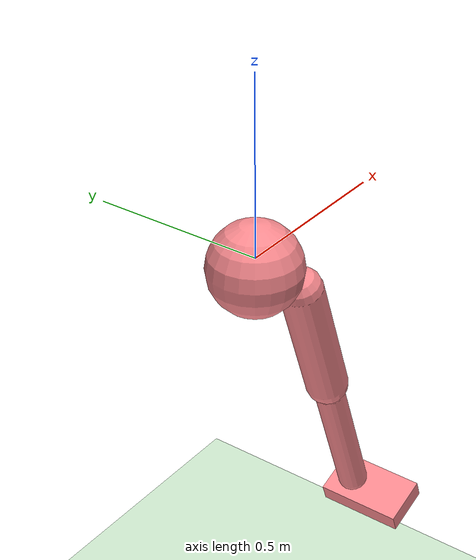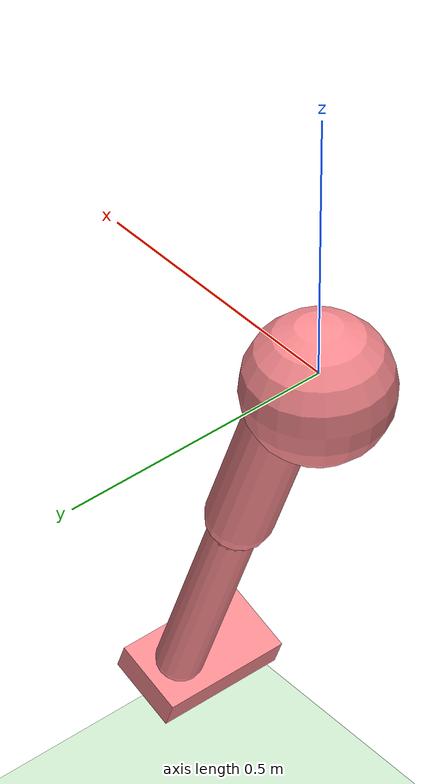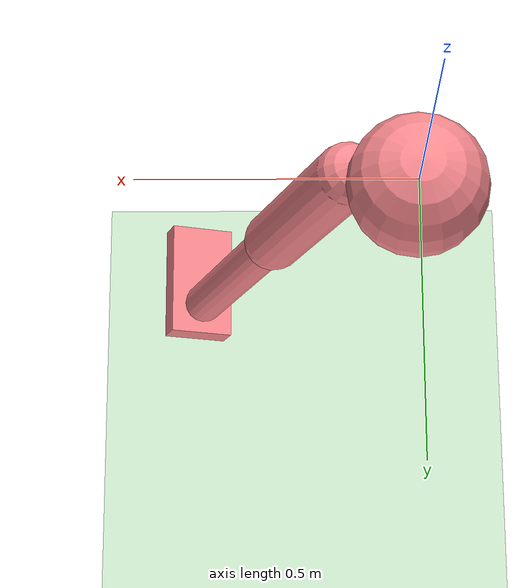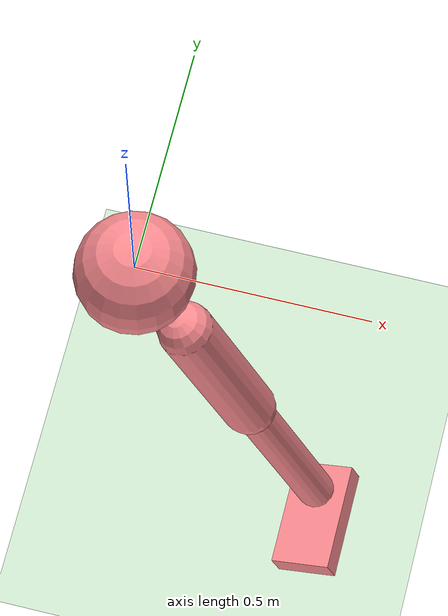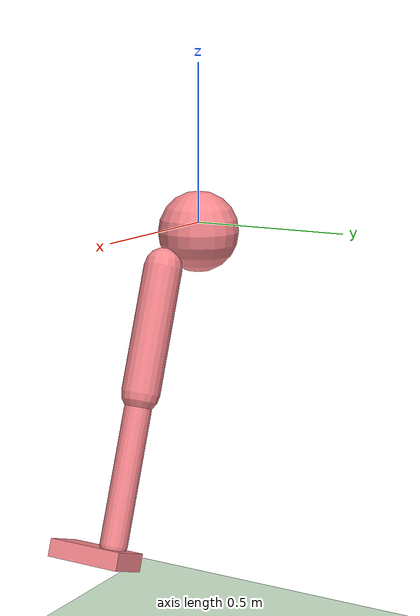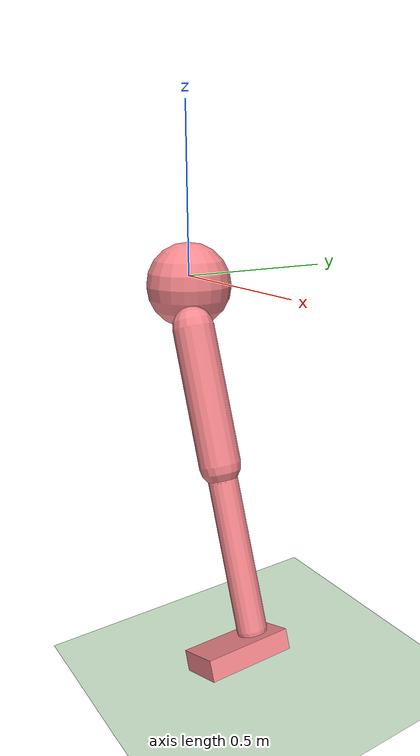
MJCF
<mujoco model="humanoid">
  <compiler angle="degree" inertiafromgeom="true" coordinate="global" />
  <include file="./common/materials.xml" />
    <visual>
    <headlight ambient=".4 .4 .4" diffuse=".8 .8 .8" specular="0.3 0.3 0.3" />
    <map znear=".01" />
    <quality shadowsize="2048" />
  </visual>
  <default>
    <joint damping="0.0" armature="0.01" stiffness="0.0" limited="true" />
    <geom conaffinity="7" condim="1" contype="7" margin="0.001" material="self" rgba=".98 .54 .56 1." />
  </default>
  <statistic extent="3" center="0 0 1" />
  <option timestep="0.00222222222" />
  <asset>
    <texture type="skybox" file="./common/sky1.png" gridsize="3 4" gridlayout=".U..LFRB.D.." width="8192" height="8192" />
    <texture builtin="flat" height="1278" mark="cross" markrgb="1 1 1" name="texgeom" random="0.01" rgb1=".8 .6 .4" rgb2=".8 .6 .4" type="cube" width="127" />
  </asset>
  <worldbody>
    <light cutoff="100" diffuse="1 1 1" dir="-0 0 -1.3" directional="true" exponent="1" pos="0 0 1.3" specular=".1 .1 .1" />
    <geom condim="3" friction="1. .1 .1" material="grid_new" name="floor" pos="0.0 0.0 -1.3" rgba=".8 .9 .8 1" size="117.025545004681 117.025545004681 0.23405109000936203" type="plane" />

    <body name="root" user="0.0000 -0.0000 0.0000" pos="0.0 -0.0 0.0">
      <joint armature="0.0" limited="false" name="root" pos="0.0 -0.0 0.0" stiffness="1e3" type="hinge" />
      <geom pos="0.0 0.0 -0.028086130801123443" size="0.1287280995051491" type="sphere" mass="8.8725" />
      <body name="lhipjoint" user="0.0963 -0.0494 -0.0918" pos="0.0 -0.0 0.0">
        <body name="lfemur" user="0.2274 -0.0494 -0.4521" pos="0.1126955998395078 -0.05781061923231242 -0.10742945031429717">
          <joint axis="0.0000 -1.0000 0.0000" name="lfemur_z" pos="0.1126955998395078 -0.05781061923231242 -0.10742945031429717" range="-60.0000 70.0000" type="hinge" />
          <joint axis="-0.3420 -0.0000 0.9397" name="lfemur_y" pos="0.1126955998395078 -0.05781061923231242 -0.10742945031429717" range="-70.0000 70.0000" type="hinge" />
          <joint axis="0.9397 0.0000 0.3420" name="lfemur_x" pos="0.1126955998395078 -0.05781061923231242 -0.10742945031429717" range="-160.0000 20.0000" type="hinge" />
          <geom fromto="0.12065333689982612 -0.05781061923231242 -0.1294302527751772 0.2581583522803263 -0.05781061923231242 -0.5070716865052828" size="0.06085328340243412" type="capsule" mass="10.8525" />
          <body name="ltibia" user="0.3657 -0.0494 -0.8321" pos="0.2661160893406446 -0.05781061923231242 -0.5290724889661629">
            <joint axis="0.9397 0.0000 0.3420" name="ltibia_x" pos="0.2661160893406446 -0.05781061923231242 -0.5290724889661629" range="0.0000 170.0000" type="hinge" />
            <geom contype="1" conaffinity="1" fromto="0.2741908519459676 -0.05781061923231242 -0.5510732914270429 0.42000468102180016 -0.05781061923231242 -0.9517687575230707" size="0.04329945165173197" type="capsule" mass="3.4274999999999998" />
            <body name="lfoot" user="0.3731 -0.1606 -0.8523" pos="0.4279624180821185 -0.05781061923231242 -0.9737695599839506">
              <geom contype="1" conaffinity="1" pos="0.4346328741473853 -0.1158552895546342 -0.987929650929517" size="0.07021532700280861 0.1252173331550087 0.028086130801123443" quat="0.9848 -0.0000 -0.1736 0.0000" type="box" mass="0.9974999999999999" />
              <joint axis="-0.3420 -0.0000 0.9397" name="lfoot_z" pos="0.4279624180821185 -0.05781061923231242 -0.9737695599839506" range="-70.0000 20.0000" type="hinge" />
              <joint axis="0.0000 -1.0000 0.0000" name="lfoot_y" pos="0.4279624180821185 -0.05781061923231242 -0.9737695599839506" range="-45.0000 45.0000" type="hinge" />
              <joint axis="0.9397 0.0000 0.3420" name="lfoot_x" pos="0.4279624180821185 -0.05781061923231242 -0.9737695599839506" range="-45.0000 90.0000" type="hinge" />
            </body>
          </body>
        </body>
      </body>
    </body>
  </worldbody>
  <actuator>
    <motor gear="200" joint="lfemur_z" name="lfemur_z" />
    <motor gear="200" joint="lfemur_y" name="lfemur_y" />
    <motor gear="200" joint="lfemur_x" name="lfemur_x" />
    <motor gear="200" joint="ltibia_x" name="ltibia_x" />
    <motor gear="200" joint="lfoot_z" name="lfoot_z" />
    <motor gear="200" joint="lfoot_y" name="lfoot_y" />
    <motor gear="200" joint="lfoot_x" name="lfoot_x" />
  </actuator>
</mujoco>

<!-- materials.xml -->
<!--
Common textures, colors and materials to be used throughout this suite. Some
materials such as xxx_highlight are activated on occurence of certain events,
for example receiving a positive reward.
-->
<mujoco>
  <asset>
    <texture name="grid" type="2d" builtin="checker" rgb1=".1 .2 .3" rgb2=".2 .3 .4" width="300" height="300" mark="edge" markrgb=".2 .3 .4"/>
    <material name="grid" texture="grid" texrepeat="1 1" texuniform="true" reflectance=".2"/>
    <texture builtin="checker" height="100" name="texplane" rgb1="0 0 0" rgb2=".8 .8 .8" type="2d" width="100"/>
    <texture name="grass" file="./common/grass.png" type="2d"/>

    <texture name="grid_new" type="2d" builtin="checker" rgb1=".1 .3 .2" rgb2=".2 .4 .3" width="1000" height="1000" mark="none" markrgb=".8 .6 .4"/>
    <material name="grid_new" texture="grid_new" texrepeat="0.2 0.2" texuniform="true" reflectance=".2"/>
    <material name="MatPlane" reflectance="0.5" shininess="1" specular="1" texrepeat="60 60" texture="texplane"/>
    <material name="GrassPlane" reflectance="0.0" shininess="1" specular="1" texrepeat="400 400" texture="grass"/>
    <material name="self" rgba=".7 .5 .3 1"/>
    <material name="self_default" rgba=".7 .5 .3 1"/>
    <material name="self_highlight" rgba="0 .5 .3 1"/>
    <material name="effector" rgba=".7 .4 .2 1"/>
    <material name="effector_default" rgba=".7 .4 .2 1"/>
    <material name="effector_highlight" rgba="0 .5 .3 1"/>
    <material name="decoration" rgba=".3 .5 .7 1"/>
    <material name="eye" rgba="0 .2 1 1"/>
    <material name="target" rgba=".6 .3 .3 1"/>
    <material name="target_default" rgba=".6 .3 .3 1"/>
    <material name="target_highlight" rgba=".6 .3 .3 .4"/>
    <material name="expert" rgba=".6 .3 .3 .4"/>
  </asset>
</mujoco>
